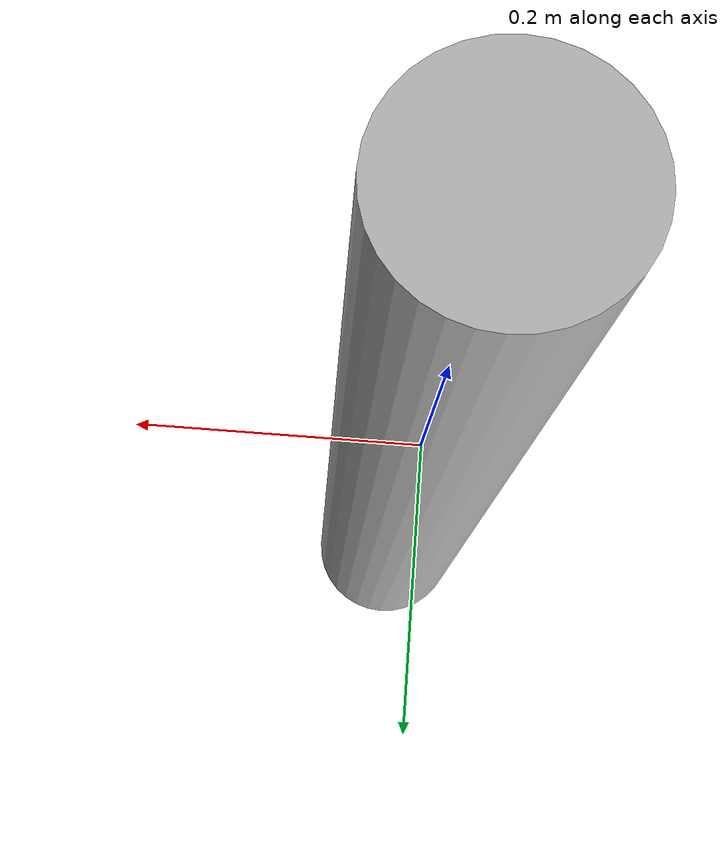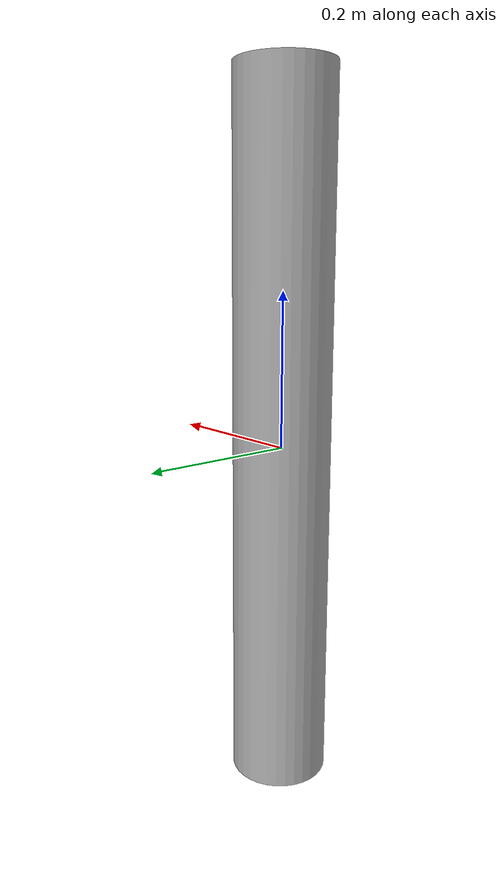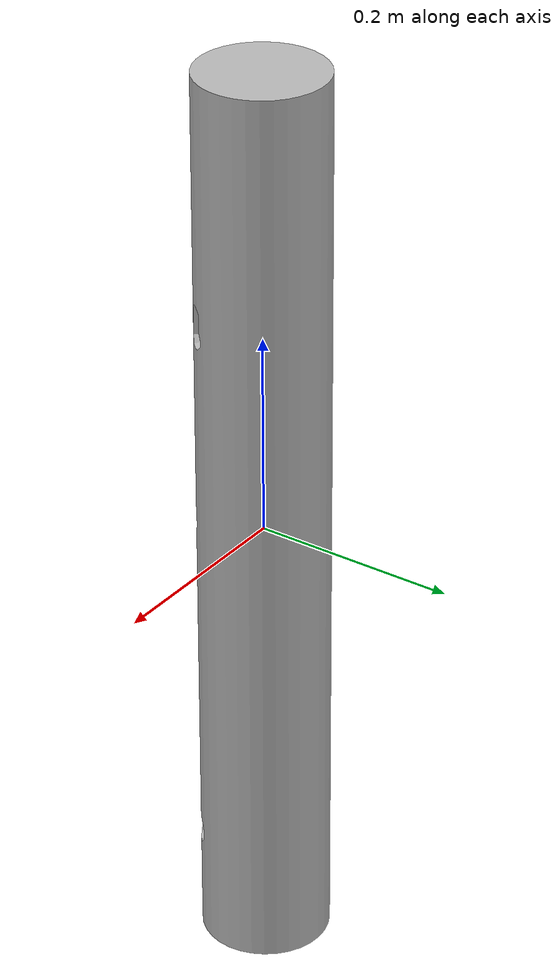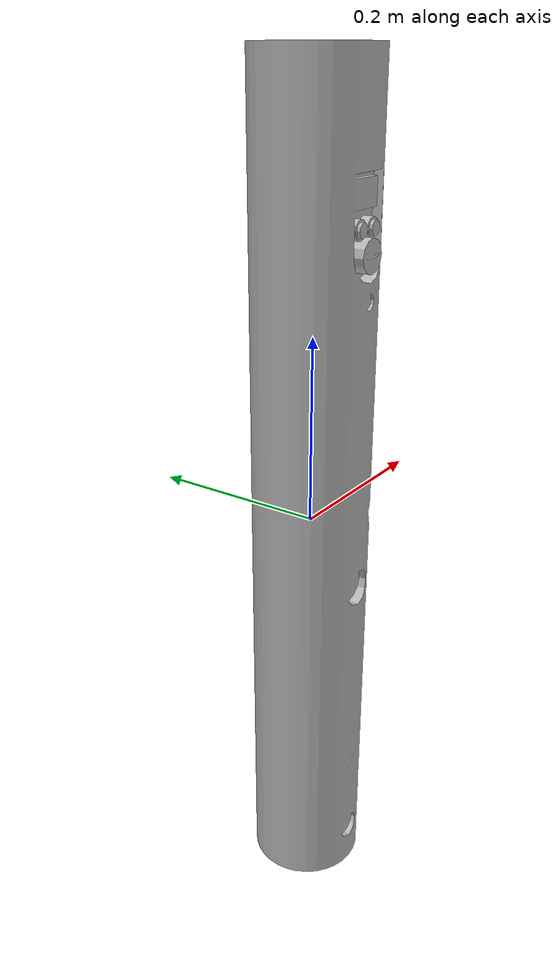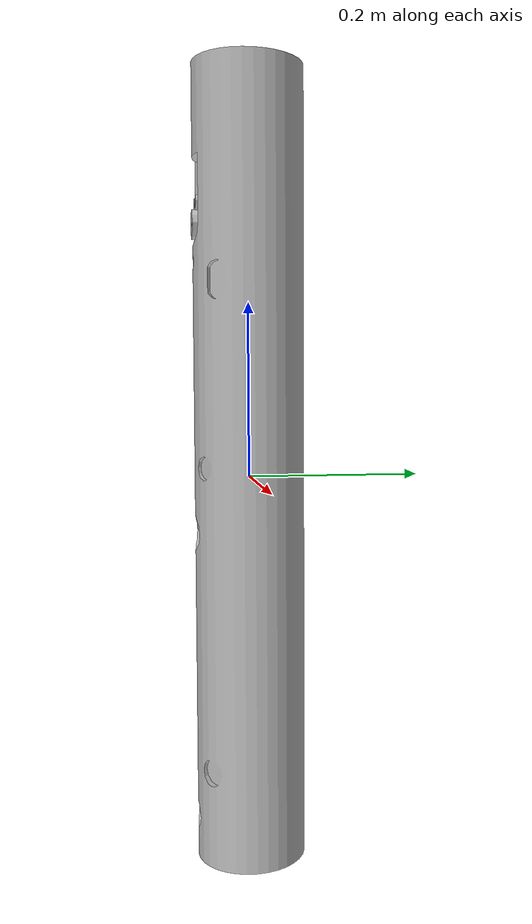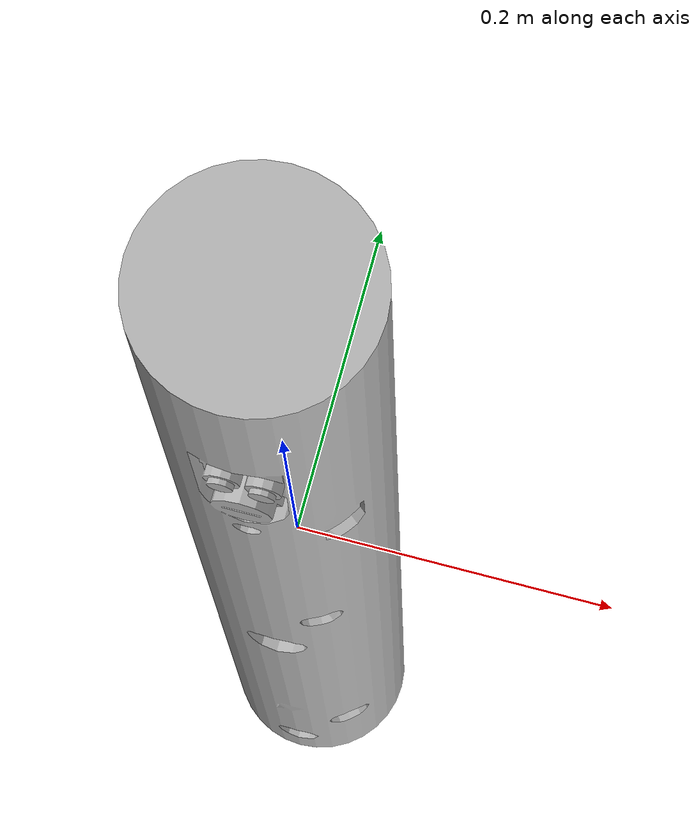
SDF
<?xml version="1.0"?>
<sdf version="1.6">
  <model name="sonobuoy">
    <static>false</static>
    <link name="base_link">
      <inertial>
        <!-- See python script in model folder for calcs -->
        <mass>5.6</mass>
        <inertia>
          <ixx>0.39</ixx>
          <ixy>0.0</ixy>
          <ixz>0.0</ixz>
          <iyy>0.39</iyy>
          <iyz>0.0</iyz>
          <izz>0.012</izz>
        </inertia>
      </inertial>
      <visual name="visual">
        <geometry>
           <mesh>
            <uri>file://sonobuoy/meshes/sonobuoy.dae</uri>
          </mesh>
        </geometry>
      </visual>
      <collision name="collision">
        <pose>0 0 0 0 0 0</pose>
        <geometry>
          <mesh>
            <uri>file://sonobuoy/meshes/sonobuoy_collision.dae</uri>
          </mesh>
        </geometry>
      </collision>
    </link>
  </model>
</sdf>
